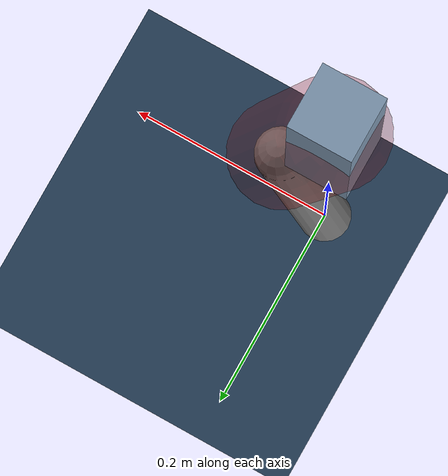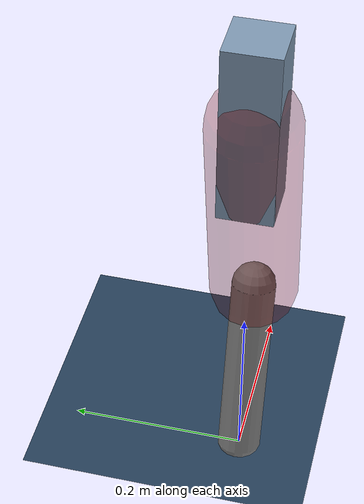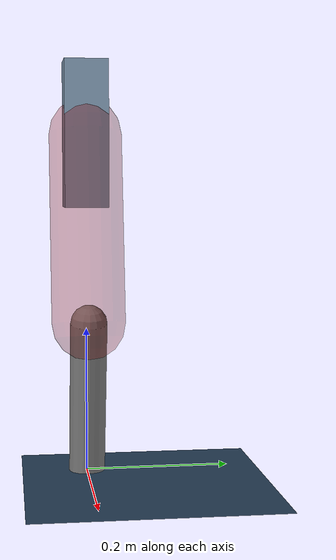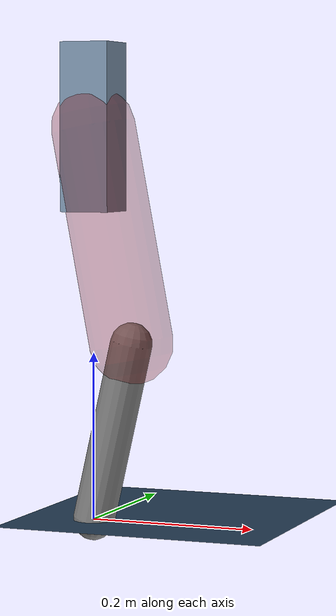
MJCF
<mujoco model="Hopper2D">
	<compiler inertiafromgeom="true" angle="radian" />
	<option timestep="0.001" integrator="implicit" cone="elliptic" solver="Newton" tolerance="1e-10" />

	<default>
		<geom contype="1" conaffinity="1" condim="3" friction="2 0.005 0.0001" solref="0.005 1" />
		<joint limited="true" damping="0.1" />
	</default>

	<asset>
		<texture name="skybox" type="skybox" builtin="gradient" rgb1=".4 .6 .8" rgb2="0 0 0" width="800" height="800" />
		<texture name="grid" type="2d" builtin="checker" rgb1=".1 .2 .3" rgb2=".2 .3 .4" width="300" height="300" mark="edge" markrgb=".2 .3 .4" />
		<material name="ground" texture="grid" texrepeat="1 1" texuniform="true" reflectance="0.1" />
		<material name="leg" rgba="0.5 0.6 0.7 1" />
	</asset>

	<worldbody>

		<geom name="floor" type="plane" size="5 5 0.25" material="ground" />

		<light directional="false" diffuse="0.8 0.8 0.8" specular="0.3 0.3 0.3" pos="0 0 2" dir="0 0 -1" />
		<light mode="targetbodycom" target="base" directional="false" diffuse="0.8 0.8 0.8" specular="0.3 0.3 0.3" pos="0 0 2" dir="0 0 -1" />

		<camera name="fixed" pos="0 -2 1" xyaxes="1 0 0 0 0 1" />
		<camera name="tracking" mode="trackcom" pos="0 -3 1" />

		<body name="root" pos="0 0 0.4691406598433421">
			<joint name="slide_x" type="slide" axis="1 0 0" range="-100 100" />
			<joint name="slide_z" type="slide" axis="0 0 1" range="0 10" />

			<body name="base" pos="0 0 0">
				<geom name="torso" type="box" size="0.03 0.03 0.1" mass="3.327" material="leg" />

				<body name="link1" pos="0 0 0" euler="0 1.3834986462903687 0">
					<joint type="hinge" axis="0 -1 0" pos="0 0 0" name="hinge1" limited="true" range="-3.14 3.14" stiffness="0" damping="0.1" />
					<geom name="thigh" type="capsule" fromto="0 0 0 0.2604481825027488 0 0" size="0.05" rgba="0.5 0 0 0.3" mass="0.8835652745071468" />

					<body name="link2" pos="0.2604481825027488 0 0" euler="0 0.4109138378992718 0">
						<joint type="hinge" axis="0 -1 0" pos="0 0 0" name="hinge2" limited="true" range="-3.14 3.14" stiffness="0" damping="0.1" />
						<geom name="shank" type="capsule" fromto="0 0 0 0.2186924773405933 0 0" size="0.025" mass="0.4165539818724746" />

					</body>
				</body>
			</body>
		</body>
	</worldbody>

	<actuator>
		<motor name="torque1" joint="hinge1" ctrlrange="-99.49728228206163 99.49728228206163" ctrllimited="true" gear="1" />
		<motor name="torque2" joint="hinge2" ctrlrange="-96.4805360453956 96.4805360453956" ctrllimited="true" gear="1" />
	</actuator>
</mujoco>
